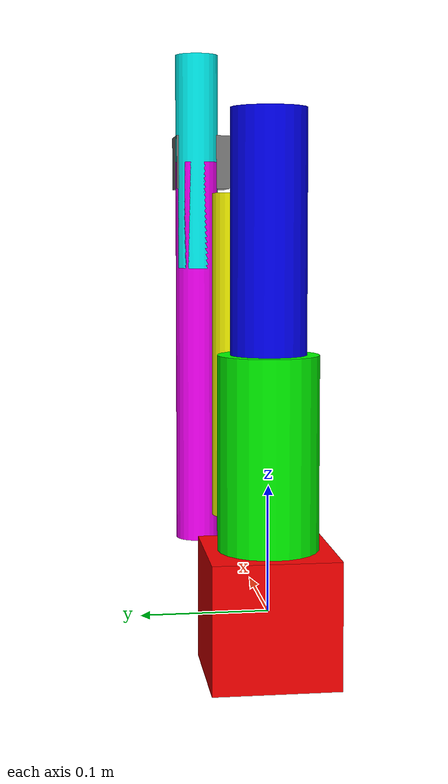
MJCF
<mujoco model="niryo_one">
    <worldbody>
        <body name="base" pos="0 0 0">
            <geom type="box" size="0.05 0.05 0.05" rgba="1 0 0 1"/>
            <joint name="joint_1" type="hinge" axis="0 0 1" limited="true" range="-175 175"/>
            <body name="shoulder" pos="0 0 0.103">
                <geom type="cylinder" size="0.04 0.1" rgba="0 1 0 1"/>
                <joint name="joint_2" type="hinge" axis="0 1 0" pos="0 0 0.080" limited="true" range="-90 36.5"/>
                <body name="arm" pos="0 0 0.080">
                    <geom type="cylinder" size="0.03 0.210" rgba="0 0 1 1"/>
                    <joint name="joint_3" type="hinge" axis="1 0 0" pos="0.210 0 0" limited="true" range="-80 80"/>
                    <body name="elbow" pos="0.210 0 0">
                        <geom type="cylinder" size="0.02 0.15" rgba="1 1 0 1"/>
                        <joint name="joint_4" type="hinge" axis="0 1 0" pos="0.0415 0.030 0" limited="true" range="-175 175"/>
                        <body name="forearm" pos="0.0415 0.030 0">
                            <geom type="cylinder" size="0.02 0.180" rgba="1 0 1 1"/>
                            <joint name="joint_5" type="hinge" axis="1 0 0" pos="0 0 0.180" limited="true" range="-100 110"/>
                            <body name="wrist" pos="0 0 0.180">
                                <geom type="cylinder" size="0.02 0.1" rgba="0 1 1 1"/>
                                <joint name="joint_6" type="hinge" axis="0 1 0" pos="0.0164 -0.0055 0" limited="true" range="-147.6 147.6"/>
                                <body name="hand" pos="0.0164 -0.0055 0">
                                    <geom type="box" size="0.025 0.025 0.025" rgba="0.5 0.5 0.5 1"/>
                                    <!-- Add additional components or end-effector here -->
                                </body>
                            </body>
                        </body>
                    </body>
                </body>
            </body>
        </body>
    </worldbody>
</mujoco>
